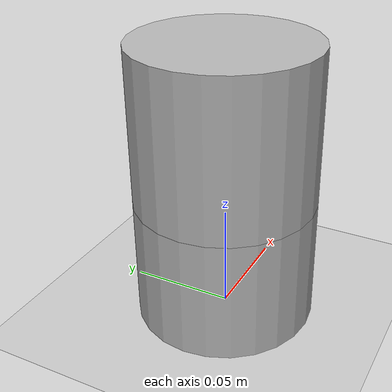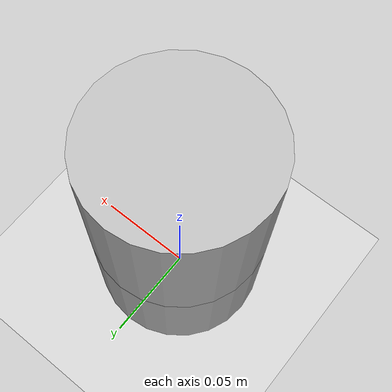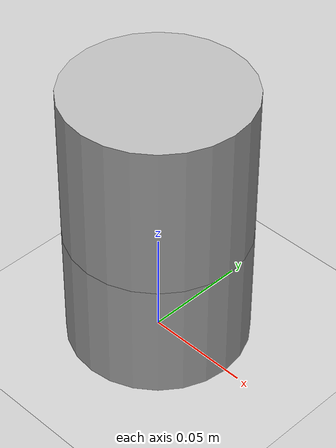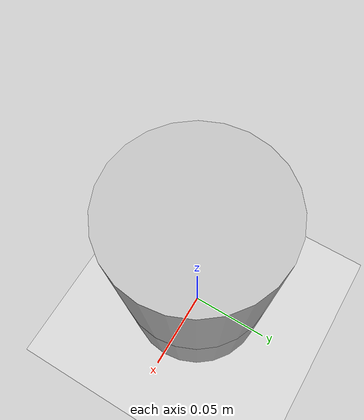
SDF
<?xml version="1.0" ?>
<sdf version="1.5">
    <world name="default">
        <!-- A global light source -->
        <include>
            <uri>model://sun</uri>
        </include>
        <!-- A ground plane -->
        <include>
            <uri>model://ground_plane</uri>
        </include>
        <model name="velodyne_hdl-32">
            <!-- Give the base link a unique name -->
            <link name="base">
                <!-- Offset the base by half the lenght of the cylinder -->
                <pose>0 0 0.029335 0 0 0</pose>
                <inertial>
                    <mass>1.2</mass>
                    <inertia>
                        <ixx>0.001087473</ixx>
                        <iyy>0.001087473</iyy>
                        <izz>0.001092437</izz>
                        <ixy>0</ixy>
                        <ixz>0</ixz>
                        <iyz>0</iyz>
                    </inertia>
                </inertial>
                <collision name="base_collision">
                    <geometry>
                        <cylinder>
                            <!-- Radius and length provided by Velodyne -->
                            <radius>.04267</radius>
                            <length>.05867</length>
                        </cylinder>
                    </geometry>
                </collision>
                <!-- The visual is mostly a copy of the collision -->
                <visual name="base_visual">
                    <geometry>
                        <cylinder>
                            <radius>.04267</radius>
                            <length>.05867</length>
                        </cylinder>
                    </geometry>
                </visual>
            </link>
            <!-- Give the base link a unique name -->
            <link name="top">
                <!-- Vertically offset the top cylinder by the length of the bottom
                     cylinder and half the length of this cylinder. -->
                <pose>0 0 0.095455 0 0 0</pose>
                <inertial>
                    <mass>0.1</mass>
                    <inertia>
                        <ixx>0.000090623</ixx>
                        <iyy>0.000090623</iyy>
                        <izz>0.000091036</izz>
                        <ixy>0</ixy>
                        <ixz>0</ixz>
                        <iyz>0</iyz>
                    </inertia>
                </inertial>
                <collision name="top_collision">
                    <geometry>
                        <cylinder>
                            <!-- Radius and length provided by Velodyne -->
                            <radius>0.04267</radius>
                            <length>0.07357</length>
                        </cylinder>
                    </geometry>
                </collision>
                <!-- The visual is mostly a copy of the collision -->
                <visual name="top_visual">
                    <geometry>
                        <cylinder>
                            <radius>0.04267</radius>
                            <length>0.07357</length>
                        </cylinder>
                    </geometry>
                </visual>
                <!-- Add a ray sensor, and give it a name -->
                <sensor type="ray" name="sensor">
                    <pose>0 0 -0.004645 1.5707 0 0</pose>
                    <!-- Enable visualization to see the rays in the GUI -->
                    <visualize>true</visualize>
                    <!-- Set the update rate of the sensor -->
                    <update_rate>30</update_rate>
                    <ray>
                        <!-- The scan element contains the horizontal and vertical beams.
                            We are leaving out the vertical beams for this tutorial. -->
                        <scan>
                            <!-- The horizontal beams -->
                            <horizontal>
                                <!-- The velodyne has 32 beams(samples) -->
                                <samples>32</samples>
                                <resolution>1</resolution>
                                <!-- Minimum angle in radians -->
                                <min_angle>-0.53529248</min_angle>
                                <!-- Maximum angle in radians -->
                                <max_angle>0.18622663</max_angle>
                            </horizontal>
                        </scan>
                        <!-- Range defines characteristics of an individual beam -->
                        <range>
                            <!-- Minimum distance of the beam -->
                            <min>0.05</min>
                            <!-- Maximum distance of the beam -->
                            <max>70</max>
                            <!-- Linear resolution of the beam -->
                            <resolution>0.02</resolution>
                        </range>
                    </ray>
                </sensor>
            </link>
            <!-- Each joint must have a unique name -->
            <joint type="revolute" name="joint">
                <!-- Position the joint at the bottom of the top link -->
                <pose>0 0 -0.036785 0 0 0</pose>
                <!-- Use the base link as the parent of the joint -->
                <parent>base</parent>
                <!-- Use the top link as the child of the joint -->
                <child>top</child>
                <!-- The axis defines the joint's degree of freedom -->
                <axis>
                    <!-- Revolve around the z-axis -->
                    <xyz>0 0 1</xyz>
                    <!-- Limit refers to the range of motion of the joint -->
                    <limit>
                        <!-- Use a very large number to indicate a continuous revolution -->
                        <lower>-10000000000000000</lower>
                        <upper>10000000000000000</upper>
                    </limit>
                </axis>
            </joint>
        </model>
    </world>
</sdf>
